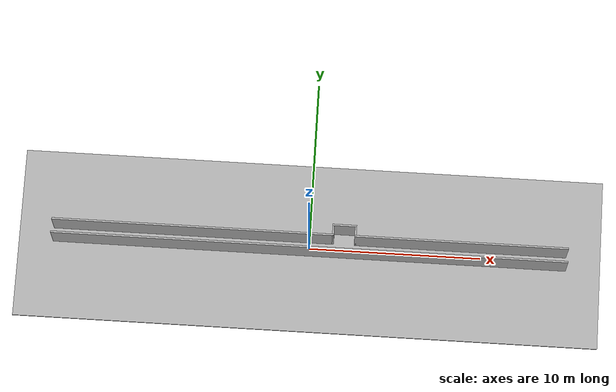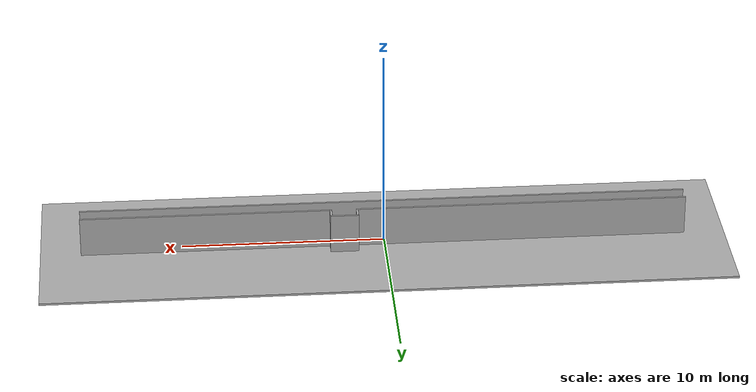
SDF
<sdf version="1.9">
 <world name="corridor_0.70">
  <gravity>0 0 -9.81</gravity>
  <plugin filename="gz-sim-physics-system" name="gz::sim::systems::Physics"/>
  <plugin filename="gz-sim-user-commands-system" name="gz::sim::systems::UserCommands"/>
  <plugin filename="gz-sim-scene-broadcaster-system" name="gz::sim::systems::SceneBroadcaster"/>
  <plugin filename="gz-sim-sensors-system" name="gz::sim::systems::Sensors">
   <render_engine>ogre2</render_engine>
  </plugin>
  <plugin filename="gz-sim-imu-system" name="gz::sim::systems::Imu"/>
  <model name="ground">
   <static>true</static>
   <link name="link">
    <collision name="collision"><geometry><box><size>34.0 10.0 0.1</size></box></geometry></collision>
    <visual name="visual">
     <geometry><box><size>34.0 10.0 0.1</size></box></geometry>
     <material><ambient>0.7 0.7 0.7 1</ambient><diffuse>0.7 0.7 0.7 1</diffuse></material>
    </visual>
   </link>
   <pose>0.0 0.0 -0.05 0 0 0</pose>
  </model>
  <model name="left_wall">
   <static>true</static>
   <link name="link">
    <collision name="collision"><geometry><box><size>30.0 0.1 2.0</size></box></geometry></collision>
    <visual name="visual">
     <geometry><box><size>30.0 0.1 2.0</size></box></geometry>
     <material><ambient>0.7 0.7 0.7 1</ambient><diffuse>0.7 0.7 0.7 1</diffuse></material>
    </visual>
   </link>
   <pose>0.0 -0.39999999999999997 1.0 0 0 0</pose>
  </model>
  <model name="right_wall_front">
   <static>true</static>
   <link name="link">
    <collision name="collision"><geometry><box><size>16.4 0.1 2.0</size></box></geometry></collision>
    <visual name="visual">
     <geometry><box><size>16.4 0.1 2.0</size></box></geometry>
     <material><ambient>0.7 0.7 0.7 1</ambient><diffuse>0.7 0.7 0.7 1</diffuse></material>
    </visual>
   </link>
   <pose>-6.800000000000001 0.39999999999999997 1.0 0 0 0</pose>
  </model>
  <model name="right_wall_back">
   <static>true</static>
   <link name="link">
    <collision name="collision"><geometry><box><size>12.4 0.1 2.0</size></box></geometry></collision>
    <visual name="visual">
     <geometry><box><size>12.4 0.1 2.0</size></box></geometry>
     <material><ambient>0.7 0.7 0.7 1</ambient><diffuse>0.7 0.7 0.7 1</diffuse></material>
    </visual>
   </link>
   <pose>8.8 0.39999999999999997 1.0 0 0 0</pose>
  </model>
  <model name="recess_side_left">
   <static>true</static>
   <link name="link">
    <collision name="collision"><geometry><box><size>0.1 0.6 2.0</size></box></geometry></collision>
    <visual name="visual">
     <geometry><box><size>0.1 0.6 2.0</size></box></geometry>
     <material><ambient>0.7 0.7 0.7 1</ambient><diffuse>0.7 0.7 0.7 1</diffuse></material>
    </visual>
   </link>
   <pose>1.3499999999999999 0.6499999999999999 1.0 0 0 0</pose>
  </model>
  <model name="recess_side_right">
   <static>true</static>
   <link name="link">
    <collision name="collision"><geometry><box><size>0.1 0.6 2.0</size></box></geometry></collision>
    <visual name="visual">
     <geometry><box><size>0.1 0.6 2.0</size></box></geometry>
     <material><ambient>0.7 0.7 0.7 1</ambient><diffuse>0.7 0.7 0.7 1</diffuse></material>
    </visual>
   </link>
   <pose>2.65 0.6499999999999999 1.0 0 0 0</pose>
  </model>
  <model name="recess_back">
   <static>true</static>
   <link name="link">
    <collision name="collision"><geometry><box><size>1.4 0.1 2.0</size></box></geometry></collision>
    <visual name="visual">
     <geometry><box><size>1.4 0.1 2.0</size></box></geometry>
     <material><ambient>0.7 0.7 0.7 1</ambient><diffuse>0.7 0.7 0.7 1</diffuse></material>
    </visual>
   </link>
   <pose>2.0 1.0 1.0 0 0 0</pose>
  </model>
  <light name="sun" type="directional">
   <pose>0 0 10 0 0 0</pose>
   <direction>-0.5 -0.5 -1</direction>
   <diffuse>1 1 1 1</diffuse>
   <specular>0.2 0.2 0.2 1</specular>
  </light>
  <plugin filename="librvo2_human_system.so" name="custom_corridor::RVO2HumanSystem">
   <human_count>1</human_count>
   <robot_name>burger</robot_name>
   <robot_radius>0.28</robot_radius>
   <human_radius>0.28</human_radius>
   <corridor_mode>true</corridor_mode>
   <corridor_half_width>0.35</corridor_half_width>
   <recess_x_min>1.35</recess_x_min>
   <recess_x_max>2.65</recess_x_max>
   <recess_x_center>2.00</recess_x_center>
   <recess_y>0.65</recess_y>
   <recess_approach_dist>3.5</recess_approach_dist>
   <recess_threshold>0.40</recess_threshold>
   <politeness_balance_point>0.60</politeness_balance_point>
   <randomize_politeness>true</randomize_politeness>
   <visual_z>1.02</visual_z>
   <proxy_z>0.85</proxy_z>
  </plugin>
  <model name="human_01_proxy">
   <pose>5.0 0.0 0.85 0 0 3.14159</pose>
   <link name="link">
    <gravity>false</gravity>
    <kinematic>true</kinematic>
    <collision name="collision">
     <geometry><cylinder><radius>0.28</radius><length>1.70</length></cylinder></geometry>
    </collision>
    <visual name="visual">
     <geometry><cylinder><radius>0.001</radius><length>0.001</length></cylinder></geometry>
     <transparency>1.0</transparency>
    </visual>
   </link>
  </model>
 </world>
</sdf>
